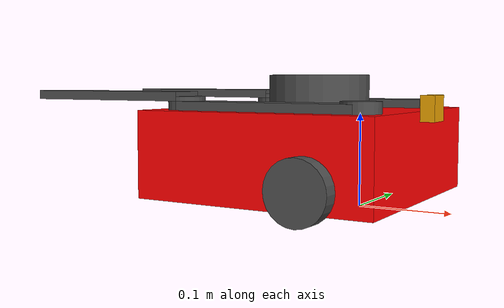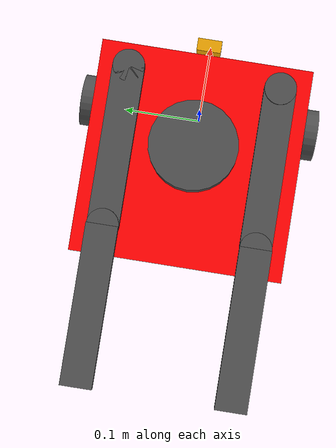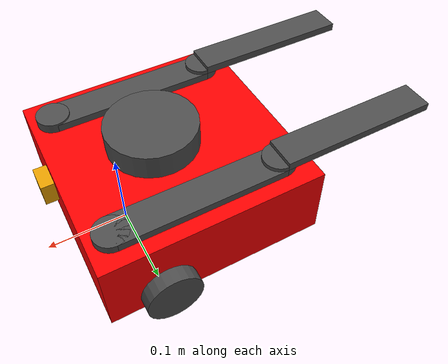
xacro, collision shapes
<?xml version="1.0" ?>
<robot name="team_hunt_player" xmlns:xacro="http://ros.org/wiki/xacro">

<!--  Arguments-->
<!--Arguments are used as $(arg argument)-->
  <xacro:arg name="player_name" default="p_mrivadeneira"/>
  <xacro:arg name="player_color" default="Red"/>

<!--  Copy argument to properties so that they are visible in the included xacros-->
<!--  Properties are used as ${property}-->
  <xacro:property name="player_name" value="$(arg player_name)"/>
  <xacro:property name="player_color" value="$(arg player_color)"/>

<!--  Includes-->
  <xacro:include filename="$(find p_mrivadeneira_description)/urdf/properties.xacro"/>
  <xacro:include filename="$(find p_mrivadeneira_description)/urdf/p_mrivadeneira.gazebo.xacro"/>

<!-- +++++++++++++++++++++++++++++++++++++++ BASIC TURTLEBOT +++++++++++++++++++++++++++++++++++++++ -->

<!--  Define links and joints-->
  <link name="base_footprint"/>

  <joint name="base_joint" type="fixed">
    <parent link="base_footprint"/>
    <child link="base_link" />
    <origin xyz="0 0 0.010" rpy="0 0 0"/>
  </joint>

  <link name="base_link">
    <visual>
      <origin xyz="-0.064 0 0.0" rpy="0 0 0"/>
      <geometry>
        <mesh filename="package://turtlebot3_description/meshes/bases/waffle_pi_base.stl" scale="0.001 0.001 0.001"/>
      </geometry>
      <material name="$(arg player_color)"/>
    </visual>

    <collision>
      <origin xyz="-0.064 0 0.047" rpy="0 0 0"/>
      <geometry>
        <box size="0.266 0.266 0.094"/>
      </geometry>
    </collision>

    <inertial>
      <origin xyz="0 0 0" rpy="0 0 0"/>
      <mass value="1.3729096e+00"/>
      <inertia ixx="8.7002718e-03" ixy="-4.7576583e-05" ixz="1.1160499e-04"
               iyy="8.6195418e-03" iyz="-3.5422299e-06"
               izz="1.4612727e-02" />
    </inertial>
  </link>

  <joint name="wheel_left_joint" type="continuous">
    <parent link="base_link"/>
    <child link="wheel_left_link"/>
    <origin xyz="0.0 0.144 0.023" rpy="-1.57 0 0"/>
    <axis xyz="0 0 1"/>
  </joint>

  <link name="wheel_left_link">
    <visual>
      <origin xyz="0 0 0" rpy="1.57 0 0"/>
      <geometry>
        <mesh filename="package://turtlebot3_description/meshes/wheels/left_tire.stl" scale="0.001 0.001 0.001"/>
      </geometry>
      <material name="dark"/>
     </visual>

    <collision>
      <origin xyz="0 0 0" rpy="0 0 0"/>
      <geometry>
        <cylinder length="0.018" radius="0.033"/>
      </geometry>
    </collision>

    <inertial>
      <origin xyz="0 0 0" />
      <mass value="2.8498940e-02" />
      <inertia ixx="1.1175580e-05" ixy="-4.2369783e-11" ixz="-5.9381719e-09"
               iyy="1.1192413e-05" iyz="-1.4400107e-11"
               izz="2.0712558e-05" />
      </inertial>
  </link>

  <joint name="wheel_right_joint" type="continuous">
    <parent link="base_link"/>
    <child link="wheel_right_link"/>
    <origin xyz="0.0 -0.144 0.023" rpy="-1.57 0 0"/>
    <axis xyz="0 0 1"/>
  </joint>

  <link name="wheel_right_link">
    <visual>
      <origin xyz="0 0 0" rpy="1.57 0 0"/>
      <geometry>
        <mesh filename="package://turtlebot3_description/meshes/wheels/right_tire.stl" scale="0.001 0.001 0.001"/>
      </geometry>
      <material name="dark"/>
    </visual>

    <collision>
      <origin xyz="0 0 0" rpy="0 0 0"/>
      <geometry>
        <cylinder length="0.018" radius="0.033"/>
      </geometry>
    </collision>

    <inertial>
      <origin xyz="0 0 0" />
      <mass value="2.8498940e-02" />
      <inertia ixx="1.1175580e-05" ixy="-4.2369783e-11" ixz="-5.9381719e-09"
               iyy="1.1192413e-05" iyz="-1.4400107e-11"
               izz="2.0712558e-05" />
      </inertial>
  </link>

  <joint name="caster_back_right_joint" type="fixed">
    <parent link="base_link"/>
    <child link="caster_back_right_link"/>
    <origin xyz="-0.177 -0.064 -0.004" rpy="-1.57 0 0"/>
  </joint>

  <link name="caster_back_right_link">
    <collision>
      <origin xyz="0 0.001 0" rpy="0 0 0"/>
      <geometry>
        <box size="0.030 0.009 0.020"/>
      </geometry>
    </collision>

    <inertial>
      <origin xyz="0 0 0" />
      <mass value="0.005" />
      <inertia ixx="0.001" ixy="0.0" ixz="0.0"
               iyy="0.001" iyz="0.0"
               izz="0.001" />
    </inertial>
  </link>

  <joint name="caster_back_left_joint" type="fixed">
    <parent link="base_link"/>
    <child link="caster_back_left_link"/>
    <origin xyz="-0.177 0.064 -0.004" rpy="-1.57 0 0"/>
  </joint>

  <link name="caster_back_left_link">
    <collision>
      <origin xyz="0 0.001 0" rpy="0 0 0"/>
      <geometry>
        <box size="0.030 0.009 0.020"/>
      </geometry>
    </collision>

    <inertial>
      <origin xyz="0 0 0" />
      <mass value="0.005" />
      <inertia ixx="0.001" ixy="0.0" ixz="0.0"
               iyy="0.001" iyz="0.0"
               izz="0.001" />
    </inertial>
  </link>

  <joint name="imu_joint" type="fixed">
    <parent link="base_link"/>
    <child link="imu_link"/>
    <origin xyz="0.0 0 0.068" rpy="0 0 0"/>
  </joint>

  <link name="imu_link"/>

  <joint name="scan_joint" type="fixed">
    <parent link="base_link"/>
    <child link="base_scan"/>
    <origin xyz="-0.064 0 0.122" rpy="0 0 0"/>
  </joint>

  <link name="base_scan">
    <visual>
      <origin xyz="0 0 0.0" rpy="0 0 0"/>
      <geometry>
        <mesh filename="package://turtlebot3_description/meshes/sensors/lds.stl" scale="0.001 0.001 0.001"/>
      </geometry>
      <material name="dark"/>
    </visual>

    <collision>
      <origin xyz="0.015 0 -0.0065" rpy="0 0 0"/>
      <geometry>
        <cylinder length="0.0315" radius="0.055"/>
      </geometry>
    </collision>

    <inertial>
      <mass value="0.114" />
      <origin xyz="0 0 0" />
      <inertia ixx="0.001" ixy="0.0" ixz="0.0"
               iyy="0.001" iyz="0.0"
               izz="0.001" />
    </inertial>
  </link>

  <joint name="camera_joint" type="fixed">
    <origin xyz="0.073 -0.011 0.084" rpy="0 0 0"/>
    <parent link="base_link"/>
    <child link="camera_link"/>
  </joint>

  <link name="camera_link">
    <collision>
      <origin xyz="0.005 0.011 0.013" rpy="0 0 0"/>
      <geometry>
        <box size="0.015 0.030 0.027"/>
      </geometry>
    </collision>
  </link>

  <joint name="camera_rgb_joint" type="fixed">
    <origin xyz="0.003 0.011 0.009" rpy="0 0 0"/>
    <parent link="camera_link"/>
    <child link="camera_rgb_frame"/>
  </joint>
  <link name="camera_rgb_frame"/>

  <joint name="camera_rgb_optical_joint" type="fixed">
    <origin xyz="0 0 0" rpy="-1.57 0 -1.57"/>
    <parent link="camera_rgb_frame"/>
    <child link="camera_rgb_optical_frame"/>
  </joint>
  <link name="camera_rgb_optical_frame"/>

<!--  &lt;!&ndash; +++++++++++++++++++++++++++++++++++++++ EXTRAS FOR TURTLEBOT +++++++++++++++++++++++++++++++++++++++ &ndash;&gt;-->

    <!--base_link to antenna-->

  <!--Right arm-->
  <link name="right_arm_base">
    <visual>
      <origin rpy="0 0 0" xyz="0 0 0"/>
      <geometry>
        <cylinder length="0.015" radius="0.02"/>
      </geometry>
      <material name="dark"/>
    </visual>
    <collision>
      <origin rpy="0 0 0" xyz="0 0 0"/>
      <geometry>
        <cylinder length="0.015" radius="0.02"/>
      </geometry>
    </collision>
    <inertial>
      <origin rpy="0 0 0" xyz="0 0 0"/>
      <mass value="0.005"/>
      <inertia
        ixx="0.001" ixy="0.0" ixz="0.0"
        iyy="0.001" iyz="0.0"
        izz="0.001"
      />
    </inertial>
  </link>

  <joint name="base_link_to_right_arm_base" type="fixed">
    <origin rpy="0 0 0" xyz="0.04 -0.095 0.0985"/>
    <parent link="base_link"/>
    <child link="right_arm_base"/>
  </joint>

    <link name="right_arm">
    <visual>
      <origin xyz="-0.1 0 0" rpy="0 0 0"/>
      <geometry>
        <box size="0.2 0.04 0.01"/>
      </geometry>
      <material name="dark"/>
    </visual>
    <collision>
      <origin xyz="-0.1 0 0" rpy="0 0 0"/>
      <geometry>
        <box size="0.2 0.04 0.01"/>
      </geometry>
    </collision>
    <inertial>
      <origin rpy="0 0 0" xyz="0 0 0"/>
      <mass value="0.005"/>
      <inertia
        ixx="0.001" ixy="0.0" ixz="0.0"
        iyy="0.001" iyz="0.0"
        izz="0.001"
      />
    </inertial>
  </link>

  <joint name="right_arm_base_to_right_arm" type="revolute">
    <axis xyz="0 0 1"/>
    <limit effort="1000.0" lower="0.0" upper="1.8" velocity="0.2"/>
    <origin rpy="0 0 0" xyz="0 0 0"/>
    <parent link="right_arm_base"/>
    <child link="right_arm"/>
    <dynamics damping="0.7" />
  </joint>

  <!--Right arm - Part 2-->
  <link name="right_arm_2_base">
    <visual>
      <origin rpy="0 0 0" xyz="0 0 0.005"/>
      <geometry>
        <cylinder length="0.02" radius="0.02"/>
      </geometry>
      <material name="dark"/>
    </visual>
    <collision>
      <origin rpy="0 0 0" xyz="0 0 0"/>
      <geometry>
        <cylinder length="0.02" radius="0.02"/>
      </geometry>
    </collision>
    <inertial>
      <origin rpy="0 0 0" xyz="0 0 0"/>
      <mass value="0.005"/>
      <inertia
        ixx="0.001" ixy="0.0" ixz="0.0"
        iyy="0.001" iyz="0.0"
        izz="0.001"
      />
    </inertial>
  </link>

  <joint name="right_arm_to_right_arm_2_base" type="fixed">
    <origin rpy="0 0 0" xyz="-0.2 0 0"/>
    <parent link="right_arm"/>
    <child link="right_arm_2_base"/>
  </joint>

    <link name="right_arm_2">
    <visual>
      <origin xyz="0.1 0 0" rpy="0 0 0"/>
      <geometry>
        <box size="0.2 0.04 0.01"/>
      </geometry>
      <material name="dark"/>
    </visual>
    <collision>
      <origin xyz="-0.1 0 0" rpy="0 0 0"/>
      <geometry>
        <box size="0.2 0.04 0.01"/>
      </geometry>
    </collision>
    <inertial>
      <origin rpy="0 0 0" xyz="0 0 0"/>
      <mass value="0.005"/>
      <inertia
        ixx="0.001" ixy="0.0" ixz="0.0"
        iyy="0.001" iyz="0.0"
        izz="0.001"
      />
    </inertial>
  </link>

  <joint name="right_arm_2_base_to_right_arm_2" type="revolute">
    <axis xyz="0 0 1"/>
    <limit effort="1000.0" lower="-6.5" upper="3.5" velocity="0.2"/>
    <origin rpy="0 0 0" xyz="0 0 0.01"/>
    <parent link="right_arm_2_base"/>
    <child link="right_arm_2"/>
    <dynamics damping="0.7" />
  </joint>

   <!--Left arm-->
  <link name="left_arm_base">
    <visual>
      <origin rpy="0 0 0" xyz="0 0 0"/>
      <geometry>
        <cylinder length="0.01" radius="0.02"/>
      </geometry>
      <material name="dark"/>
    </visual>
    <collision>
      <origin rpy="0 0 0" xyz="0 0 0"/>
      <geometry>
        <cylinder length="0.01" radius="0.02"/>
      </geometry>
    </collision>
    <inertial>
      <origin rpy="0 0 0" xyz="0 0 0"/>
      <mass value="0.005"/>
      <inertia
        ixx="0.001" ixy="0.0" ixz="0.0"
        iyy="0.001" iyz="0.0"
        izz="0.001"
      />
    </inertial>
  </link>

  <joint name="base_link_to_left_arm_base" type="fixed">
    <origin rpy="0 0 0" xyz="0.04 0.095 0.0985"/>
    <parent link="base_link"/>
    <child link="left_arm_base"/>
  </joint>

    <link name="left_arm">
    <visual>
      <origin xyz="-0.1 0 0" rpy="0 0 0"/>
      <geometry>
        <box size="0.2 0.04 0.01"/>
      </geometry>
      <material name="dark"/>
    </visual>
    <collision>
      <origin xyz="-0.1 0 0" rpy="0 0 0"/>
      <geometry>
        <box size="0.2 0.04 0.01"/>
      </geometry>
    </collision>
    <inertial>
      <origin rpy="0 0 0" xyz="0 0 0"/>
      <mass value="0.005"/>
      <inertia
        ixx="0.001" ixy="0.0" ixz="0.0"
        iyy="0.001" iyz="0.0"
        izz="0.001"
      />
    </inertial>
  </link>

    <joint name="left_arm_base_to_left_arm" type="revolute">
    <axis xyz="0 0 1"/>
    <limit effort="1000.0" lower="-1.8" upper="0.0" velocity="0.2"/>
    <origin rpy="0 0 0" xyz="0 0 0"/>
    <parent link="left_arm_base"/>
    <child link="left_arm"/>
    <dynamics damping="0.7" />
  </joint>

    <!--Left arm - Part 2-->
  <link name="left_arm_2_base">
    <visual>
      <origin rpy="0 0 0" xyz="0 0 0.005"/>
      <geometry>
        <cylinder length="0.02" radius="0.02"/>
      </geometry>
      <material name="dark"/>
    </visual>
    <collision>
      <origin rpy="0 0 0" xyz="0 0 0"/>
      <geometry>
        <cylinder length="0.02" radius="0.02"/>
      </geometry>
    </collision>
    <inertial>
      <origin rpy="0 0 0" xyz="0 0 0"/>
      <mass value="0.005"/>
      <inertia
        ixx="0.001" ixy="0.0" ixz="0.0"
        iyy="0.001" iyz="0.0"
        izz="0.001"
      />
    </inertial>
  </link>

  <joint name="left_arm_to_left_arm_2_base" type="fixed">
    <origin rpy="0 0 0" xyz="-0.2 0 0"/>
    <parent link="left_arm"/>
    <child link="left_arm_2_base"/>
  </joint>

    <link name="left_arm_2">
    <visual>
      <origin xyz="0.1 0 0" rpy="0 0 0"/>
      <geometry>
        <box size="0.2 0.04 0.01"/>
      </geometry>
      <material name="dark"/>
    </visual>
    <collision>
      <origin xyz="-0.1 0 0" rpy="0 0 0"/>
      <geometry>
        <box size="0.2 0.04 0.01"/>
      </geometry>
    </collision>
    <inertial>
      <origin rpy="0 0 0" xyz="0 0 0"/>
      <mass value="0.005"/>
      <inertia
        ixx="0.001" ixy="0.0" ixz="0.0"
        iyy="0.001" iyz="0.0"
        izz="0.001"
      />
    </inertial>
  </link>

  <joint name="left_arm_2_base_to_left_arm_2" type="revolute">
    <axis xyz="0 0 1"/>
    <limit effort="1000.0" lower="-3.5" upper="6.5" velocity="0.2"/>
    <origin rpy="0 0 0" xyz="0 0 0.01"/>
    <parent link="left_arm_2_base"/>
    <child link="left_arm_2"/>
    <dynamics damping="0.7" />
  </joint>

<!-- +++++++++++++++++++++++++++++++++++++++ Gazebo Related Part ++++++++++++++++++++++++++++++++++++++++++++ -->

<!--  ROS control plug-in for Gazebo-->
  <gazebo>
    <plugin name="gazebo_ros_control" filename="libgazebo_ros_control.so">
        <robotNamespace>/${player_name}</robotNamespace>
        <robotSimType>gazebo_ros_control/DefaultRobotHWSim</robotSimType>
        <robotParam>/${player_name}/robot_description</robotParam>
        <legacyModeNS>true</legacyModeNS>
    </plugin>
  </gazebo>

<!--  Transmission definition for arms-->
  <transmission name="right_arm_base_to_right_arm_transmission">
    <type>transmission_interface/SimpleTransmission</type>
    <joint name="right_arm_base_to_right_arm">
      <hardwareInterface>hardware_interface/EffortJointInterface</hardwareInterface>
    </joint>
    <actuator name="motor1">
      <hardwareInterface>hardware_interface/EffortJointInterface</hardwareInterface>
      <mechanicalReduction>1</mechanicalReduction>
    </actuator>
  </transmission>

    <transmission name="left_arm_base_to_left_arm_transmission">
    <type>transmission_interface/SimpleTransmission</type>
    <joint name="left_arm_base_to_left_arm">
      <hardwareInterface>hardware_interface/EffortJointInterface</hardwareInterface>
    </joint>
    <actuator name="motor2">
      <hardwareInterface>hardware_interface/EffortJointInterface</hardwareInterface>
      <mechanicalReduction>1</mechanicalReduction>
    </actuator>
  </transmission>

  <transmission name="right_arm_2_base_to_right_arm_2_transmission">
    <type>transmission_interface/SimpleTransmission</type>
    <joint name="right_arm_2_base_to_right_arm_2">
      <hardwareInterface>hardware_interface/EffortJointInterface</hardwareInterface>
    </joint>
    <actuator name="motor3">
      <hardwareInterface>hardware_interface/EffortJointInterface</hardwareInterface>
      <mechanicalReduction>1</mechanicalReduction>
    </actuator>
  </transmission>

  <transmission name="left_arm_2_base_to_left_arm_2_transmission">
    <type>transmission_interface/SimpleTransmission</type>
    <joint name="left_arm_2_base_to_left_arm_2">
      <hardwareInterface>hardware_interface/EffortJointInterface</hardwareInterface>
    </joint>
    <actuator name="motor4">
      <hardwareInterface>hardware_interface/EffortJointInterface</hardwareInterface>
      <mechanicalReduction>1</mechanicalReduction>
    </actuator>
  </transmission>

</robot>

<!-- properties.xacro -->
<robot name="xacro_properties" xmlns:xacro="http://ros.org/wiki/xacro">

  <!-- Init colour -->
  <material name="black">
      <color rgba="0.0 0.0 0.0 1.0"/>
  </material>

  <material name="dark">
    <color rgba="0.3 0.3 0.3 1.0"/>
  </material>
  <material name="light_black">
    <color rgba="0.4 0.4 0.4 1.0"/>
  </material>

  <material name="blue">
    <color rgba="0.0 0.0 0.8 1.0"/>
  </material>

  <material name="green">
    <color rgba="0.0 0.8 0.0 1.0"/>
  </material>

  <material name="grey">
    <color rgba="0.5 0.5 0.5 1.0"/>
  </material>

  <material name="orange">
    <color rgba="${255/255} ${108/255} ${10/255} 1.0"/>
  </material>

  <material name="brown">
    <color rgba="${222/255} ${207/255} ${195/255} 1.0"/>
  </material>

  <material name="red">
    <color rgba="0.8 0.0 0.0 1.0"/>
  </material>

  <material name="white">
    <color rgba="1.0 1.0 1.0 1.0"/>
  </material>

<!--  Team Hunt player colors-->
  <material name="Red">
    <color rgba="1.0 0 0 1.0"/>
  </material>

  <material name="Green">
    <color rgba="0 1.0 0 1.0"/>
  </material>

  <material name="Blue">
    <color rgba="0 0 1.0 1.0"/>
  </material>

</robot>
